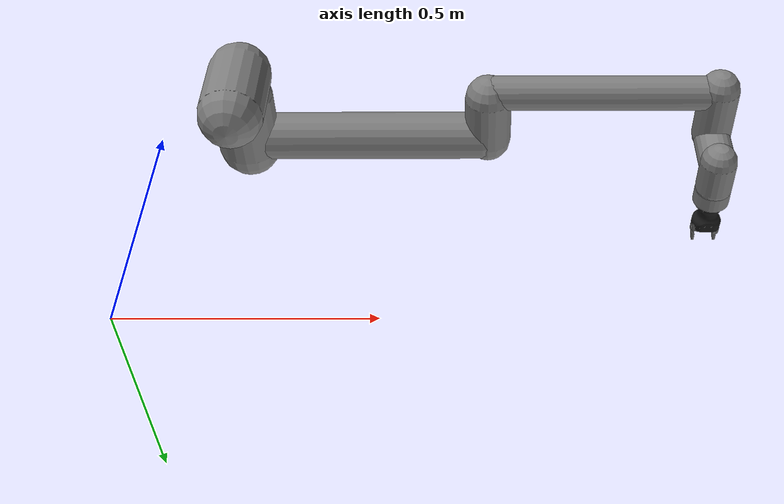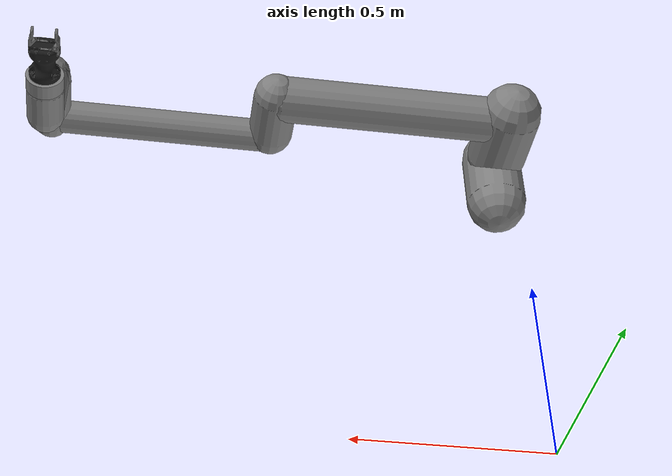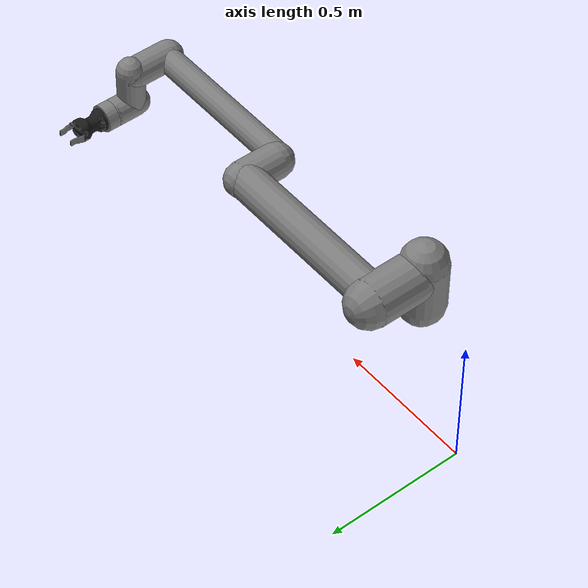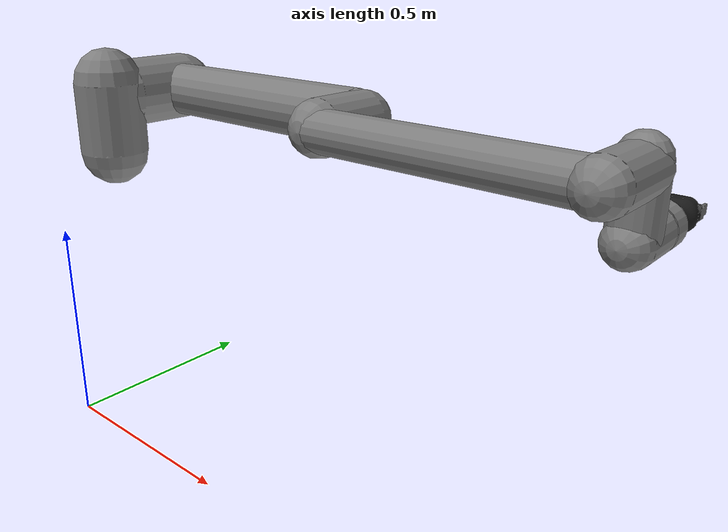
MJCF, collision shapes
<mujoco model="ur10e_hand-e">

	<default>
		<!-- ======= UR control classes ======= -->
		<include file="../ur10e/ur10e_classes.xml" />

		<!-- ======= hand-e control classes ======= -->
		<include file="../hand-e/hand-e_classes.xml" />

	</default>

	<asset>
		<!-- ======= UR Assets ======= -->
		<include file="../ur10e/ur10e_assets.xml"/>

		<!-- ======= hand-e Assets ======= -->
		<include file="../hand-e/hand-e_assets.xml"/>
	</asset>

	<worldbody>

		<light name="spotlight" mode="targetbodycom" target="wrist_2_link" pos="0 -1 2"/>

		<body name="base" quat="1 0 0 0" pos="0.1 0.1 0.65" childclass="ur10e">

			<inertial mass="4.0" pos="0 0 0" diaginertia="0.0061063308908 0.0061063308908 0.01125"/>
			<geom mesh="ur10e_base_0" material="urblack" class="visual"/>
			<geom mesh="ur10e_base_1" material="jointgray" class="visual"/>
			<body name="shoulder_link" pos="0 0 0.181">
				<inertial pos="0 0 0" mass="7.778" diaginertia="0.0314743 0.0314743 0.0218756"/>
				<joint name="ur10e_shoulder_pan_joint" class="size4" axis="0 0 1"/>
				<geom mesh="ur10e_shoulder_0" material="urblue" class="visual"/>
				<geom mesh="ur10e_shoulder_1" material="urblack" class="visual"/>
				<geom mesh="ur10e_shoulder_2" material="jointgray" class="visual"/>
				<geom class="collision" size="0.078 0.08" pos="0 0 -0.05"/>
				<body name="upper_arm_link" pos="0 0.176 0" quat="1 0 1 0">
					<inertial pos="0 0 0.3065" mass="12.93" diaginertia="0.423074 0.423074 0.0363656"/>
					<joint name="ur10e_shoulder_lift_joint" class="size4"/>
					<geom mesh="ur10e_upperarm_0" material="urblack" class="visual"/>
					<geom mesh="ur10e_upperarm_1" material="jointgray" class="visual"/>
					<geom mesh="ur10e_upperarm_2" material="urblue" class="visual"/>
					<geom mesh="ur10e_upperarm_3" material="linkgray" class="visual"/>
					<geom class="collision" pos="0 -0.05 0" quat="1 1 0 0" size="0.078 0.08"/>
					<geom class="collision" size="0.06 0.3" pos="0 0 0.3"/>
					<body name="forearm_link" pos="0 -0.137 0.613">
						<inertial pos="0 0 0.2855" mass="3.87" diaginertia="0.11059 0.11059 0.0108844"/>
						<joint name="ur10e_elbow_joint" class="size3_limited"/>
						<geom mesh="ur10e_forearm_0" material="urblue" class="visual"/>
						<geom mesh="ur10e_forearm_1" material="urblack" class="visual"/>
						<geom mesh="ur10e_forearm_2" material="jointgray" class="visual"/>
						<geom mesh="ur10e_forearm_3" material="linkgray" class="visual"/>
						<geom class="collision" pos="0 0.08 0" quat="1 1 0 0" size="0.058 0.065"/>
						<geom class="collision" size="0.043 0.28" pos="0 0 0.29"/>
						<body name="wrist_1_link" pos="0 0 0.571" quat="1 0 1 0">
							<inertial pos="0 0.135 0" quat="0.5 0.5 -0.5 0.5" mass="1.96" diaginertia="0.0055125 0.00510825 0.00510825"/>
							<joint name="ur10e_wrist_1_joint" class="size2"/>
							<geom mesh="ur10e_wrist1_0" material="urblack" class="visual"/>
							<geom mesh="ur10e_wrist1_1" material="urblue" class="visual"/>
							<geom mesh="ur10e_wrist1_2" material="jointgray" class="visual"/>
							<geom class="collision" pos="0 0.06 0" quat="1 1 0 0" size="0.05 0.07"/>
							<body name="wrist_2_link" pos="0 0.135 0">
								<inertial pos="0 0 0.12" quat="0.5 0.5 -0.5 0.5" mass="1.96" diaginertia="0.0055125 0.00510825 0.00510825"/>
								<joint name="ur10e_wrist_2_joint" axis="0 0 1" class="size2"/>
								<geom mesh="ur10e_wrist2_0" material="urblack" class="visual"/>
								<geom mesh="ur10e_wrist2_1" material="urblue" class="visual"/>
								<geom mesh="ur10e_wrist2_2" material="jointgray" class="visual"/>
								<geom class="collision" size="0.046 0.065" pos="0 0 0.05"/>
								<geom class="collision" pos="0 0.028 0.12" quat="1 1 0 0" size="0.046 0.043"/>
								<body name="wrist_3_link" pos="0 0 0.12">
									<inertial pos="0 0.092 0" quat="0 1 -1 0" mass="0.202" diaginertia="0.000204525 0.000144346 0.000144346"/>
									<joint name="ur10e_wrist_3_joint" class="size2"/>
									<geom material="linkgray" mesh="ur10e_wrist3" class="visual"/>
									<geom class="eef_collision" pos="0 0.097 0" quat="1 1 0 0" size="0.046 0.02"/>

									<body name="ee_link" pos="0 0.11 0" quat="1 -1 0 0">
										<inertial pos="-0.01 0 0" mass="0.001" diaginertia="1.66667e-08 1.66667e-08 1.66667e-08" />
										<geom size="0.005 0.005 0.005" pos="-0.01 0 0" type="box" />
										<site name="ur10e_ee" pos="0 0 1" quat="1 2 1 1"/>

										<!-- ====== hand-e hand ====== -->
										<include file="../hand-e/hand-e.xml" />
									</body>
								</body>
							</body>
						</body>
					</body>
				</body>
			</body>
		</body>
	</worldbody>

	<actuator>
		<!-- ======= UR actuators ======= -->
		<include file="../ur10e/ur10e_actuators.xml" />

		<!-- ======= hand-e actuators ======= -->
		<include file="../hand-e/hand-e_actuators.xml" />
	</actuator>

</mujoco>

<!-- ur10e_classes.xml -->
<mujocoinclude>
    <default class="ur10e">
      <material specular="0.5" shininess="0.25"/>
      <joint axis="0 1 0" range="-6.28319 6.28319" armature="0.1"/>
      <position ctrlrange="-6.2831 6.2831"/>
      <general biastype="affine" ctrlrange="-6.2831 6.2831" gainprm="5000" biasprm="0 -5000 -500"/>
      <default class="size4">

        <joint damping="15" stiffness="3"/>

        <general forcerange="-330 330"/>
      </default>
      <default class="size3">

        <joint damping="10" stiffness="2"/>

        <general forcerange="-150 150"/>
        <default class="size3_limited">
          <joint range="-3.1415 3.1415"/>
          <general ctrlrange="-3.1415 3.1415"/>
        </default>
      </default>
      <default class="size2">

        <joint damping="10" stiffness="2"/>

        <general forcerange="-56 56"/>
      </default>
      <default class="visual">
        <geom type="mesh" contype="0" conaffinity="0" group="2"/>
      </default>
      <default class="collision">
        <geom type="capsule" group="3"/>
        <default class="eef_collision">
          <geom type="cylinder"/>
        </default>
      </default>
      <site size="0.001" rgba="0.5 0.5 0.5 0.3" group="4"/>
    </default>
</mujocoinclude>

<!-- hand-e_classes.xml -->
<mujocoinclude>
	<default class="hand-e">

		<default class="hand-e_lf">,
			<joint range="-0.025 0.025" pos="0 0 0" axis="-1 0 0" type="slide" limited="true" armature="0.005" damping="0.1" solimplimit="0.95 0.99 0.001" solreflimit="0.005 1"/>
			<position ctrlrange="-0.025 0.025" forcerange="-180 180" />
		</default>

		<default class="hand-e_rf">
			<joint range="-0.025 0.025" pos="0 0 0" axis="1 0 0" type="slide" limited="true" armature="0.005" damping="0.1" solimplimit="0.95 0.99 0.001" solreflimit="0.005 1"/>
			<position ctrlrange="-0.025 0.025" forcerange="-180 180" />
		</default>

	</default>
</mujocoinclude>

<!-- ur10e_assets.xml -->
<mujocoinclude>

      <material class="ur10e" name="urblack" rgba="0.033 0.033 0.033 1"/>
      <material class="ur10e" name="jointgray" rgba="0.278 0.278 0.278 1"/>
      <material class="ur10e" name="linkgray" rgba="0.82 0.82 0.82 1"/>
      <material class="ur10e" name="urblue" rgba="0.49 0.678 0.8 1"/>

      <mesh file="../ur10e/assets/ur10e_base_0.obj"/>
      <mesh file="../ur10e/assets/ur10e_base_1.obj"/>
      <mesh file="../ur10e/assets/ur10e_shoulder_0.obj"/>
      <mesh file="../ur10e/assets/ur10e_shoulder_1.obj"/>
      <mesh file="../ur10e/assets/ur10e_shoulder_2.obj"/>
      <mesh file="../ur10e/assets/ur10e_upperarm_0.obj"/>
      <mesh file="../ur10e/assets/ur10e_upperarm_1.obj"/>
      <mesh file="../ur10e/assets/ur10e_upperarm_2.obj"/>
      <mesh file="../ur10e/assets/ur10e_upperarm_3.obj"/>
      <mesh file="../ur10e/assets/ur10e_forearm_0.obj"/>
      <mesh file="../ur10e/assets/ur10e_forearm_1.obj"/>
      <mesh file="../ur10e/assets/ur10e_forearm_2.obj"/>
      <mesh file="../ur10e/assets/ur10e_forearm_3.obj"/>
      <mesh file="../ur10e/assets/ur10e_wrist1_0.obj"/>
      <mesh file="../ur10e/assets/ur10e_wrist1_1.obj"/>
      <mesh file="../ur10e/assets/ur10e_wrist1_2.obj"/>
      <mesh file="../ur10e/assets/ur10e_wrist2_0.obj"/>
      <mesh file="../ur10e/assets/ur10e_wrist2_1.obj"/>
      <mesh file="../ur10e/assets/ur10e_wrist2_2.obj"/>
      <mesh file="../ur10e/assets/ur10e_wrist3.obj"/>

</mujocoinclude>

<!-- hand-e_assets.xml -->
<mujocoinclude>
	<mesh name="hand-e"   file="../hand-e/assets/stl/hand-e.stl" />
	<mesh name="finger_1" file="../hand-e/assets/stl/finger_1.stl" />
	<mesh name="finger_2" file="../hand-e/assets/stl/finger_2.stl" />
</mujocoinclude>

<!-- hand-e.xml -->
<mujoco model="hand-e">
	<body name="hand-e">
		<geom type="mesh" contype="0" conaffinity="0" group="1" rgba="0.1 0.1 0.1 1" mesh="hand-e" />
		<geom type="mesh" rgba="0.1 0.1 0.1 1" mesh="hand-e" />

		<body name="hande_left_finger" pos="0 0 0.099">
			<inertial pos="0.02262 -0.00759 0.00738" quat="0.871952 0.0369732 -0.211073 0.440205" mass="0.03804" diaginertia="1.22763e-05 1.22763e-05 1.22763e-05" />
			<joint name="hand-e_left_finger_joint" class="hand-e_lf"/>
			<geom type="mesh" contype="0" conaffinity="0" group="1" rgba="0.4 0.4 0.4 1" mesh="finger_1" />
			<geom type="mesh" rgba="0.4 0.4 0.4 1" mesh="finger_1" />
		</body>

		<body name="hande_right_finger" pos="0 0 0.099">
			<inertial pos="-0.02262 0.00759 0.00738" quat="0.871952 -0.0369732 0.211073 0.440205" mass="0.03804" diaginertia="1.22763e-05 1.22763e-05 1.22763e-05" />
			<joint name="hand-e_right_finger_joint" class="hand-e_rf" />
			<geom type="mesh" contype="0" conaffinity="0" group="1" rgba="0.4 0.4 0.4 1" mesh="finger_2" />
			<geom type="mesh" rgba="0.4 0.4 0.4 1" mesh="finger_2" />
		</body>

	</body>
</mujoco>

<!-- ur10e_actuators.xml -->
<mujocoinclude>
    <general class="size4"         name="ur10e_shoulder_pan"  joint="ur10e_shoulder_pan_joint"/>
    <general class="size4"         name="ur10e_shoulder_lift" joint="ur10e_shoulder_lift_joint"/>
    <general class="size3_limited" name="ur10e_elbow"         joint="ur10e_elbow_joint"/>
    <general class="size2"         name="ur10e_wrist_1"       joint="ur10e_wrist_1_joint"/>
    <general class="size2"         name="ur10e_wrist_2"       joint="ur10e_wrist_2_joint"/>
    <general class="size2"         name="ur10e_wrist_3"       joint="ur10e_wrist_3_joint"/>
</mujocoinclude>

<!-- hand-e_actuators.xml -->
<mujocoinclude>
    <position name="hand-e_lf" joint="hand-e_left_finger_joint"  class="hand-e_lf"/>
    <position name="hand-e_rh" joint="hand-e_right_finger_joint" class="hand-e_rf"/>
</mujocoinclude>
